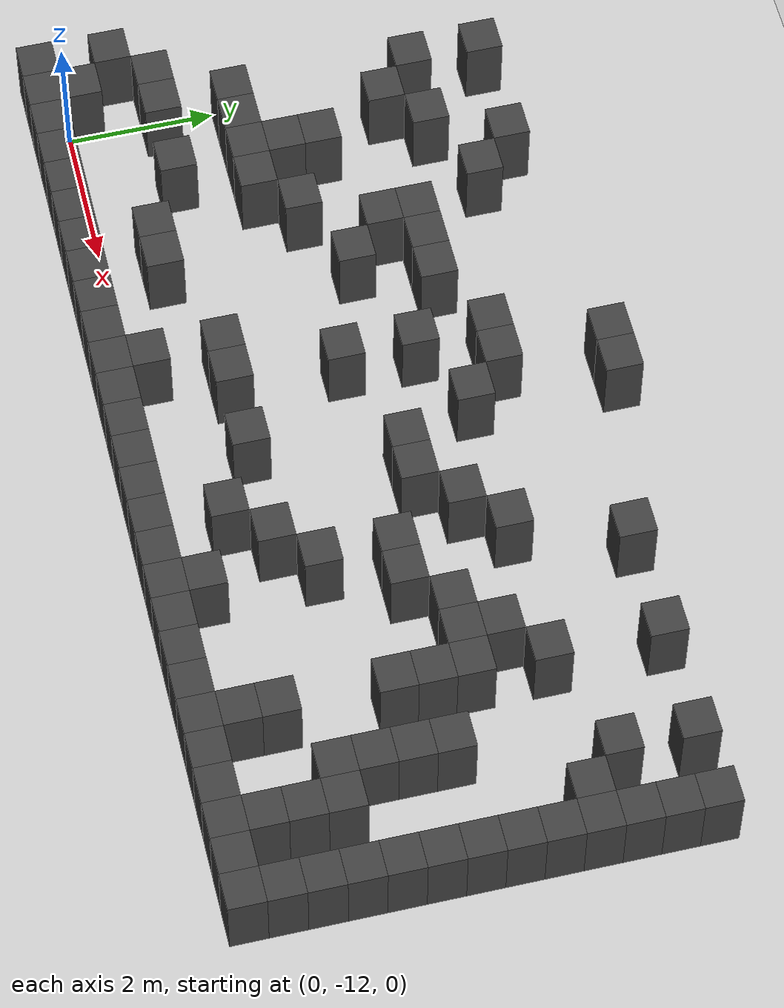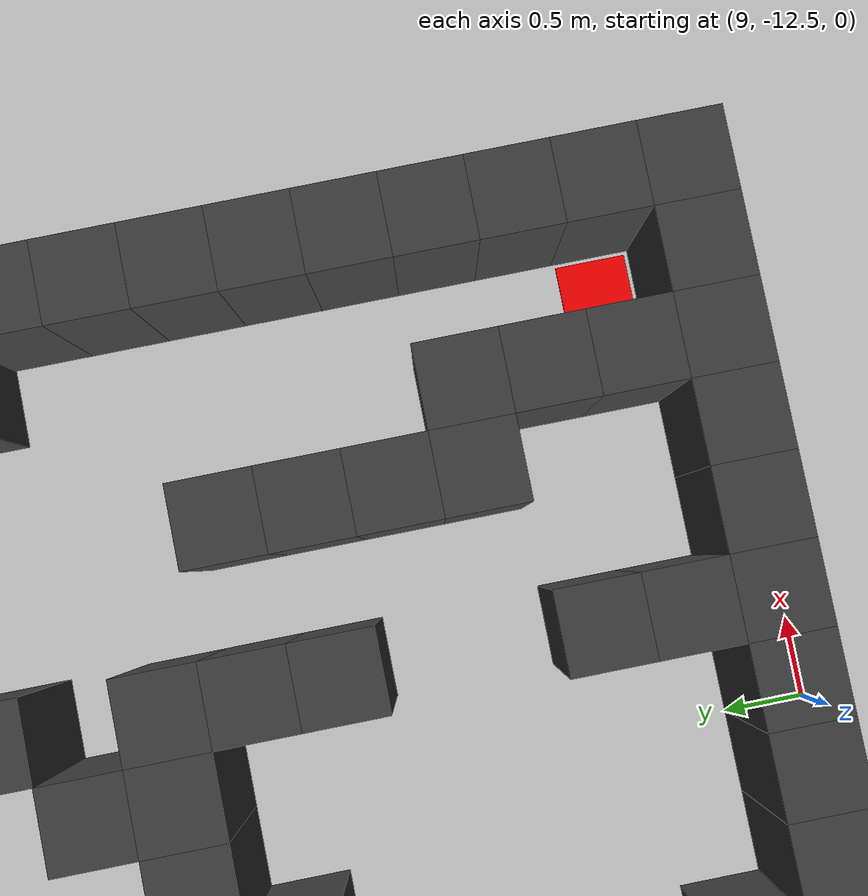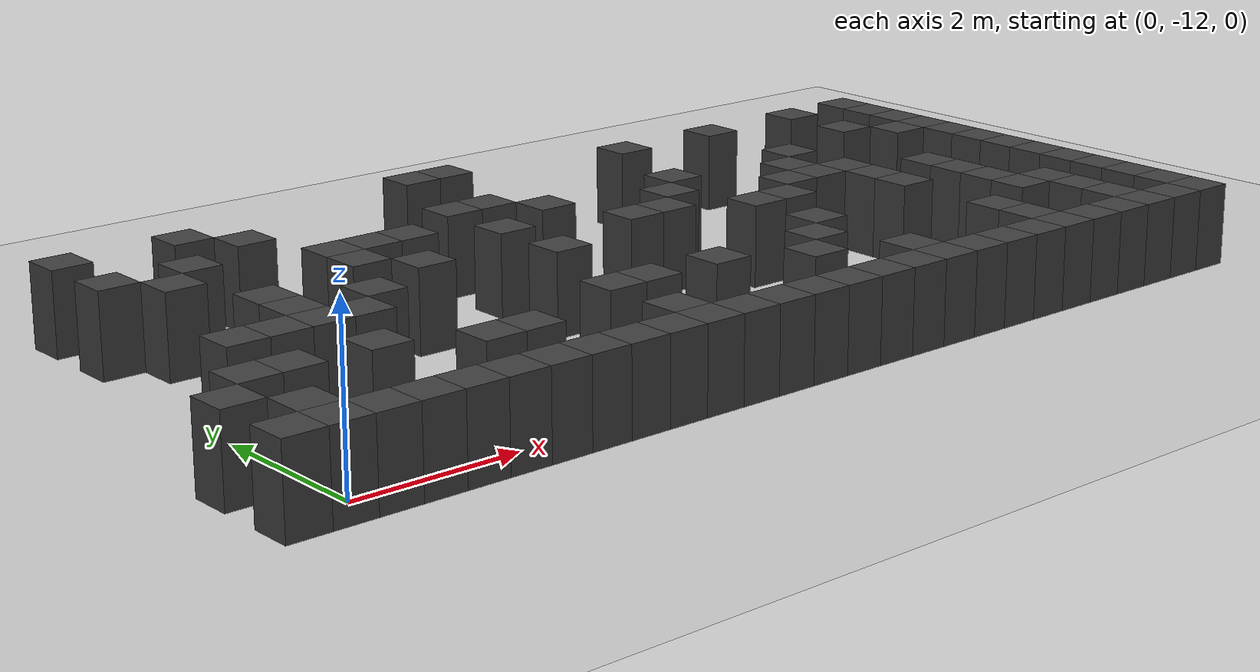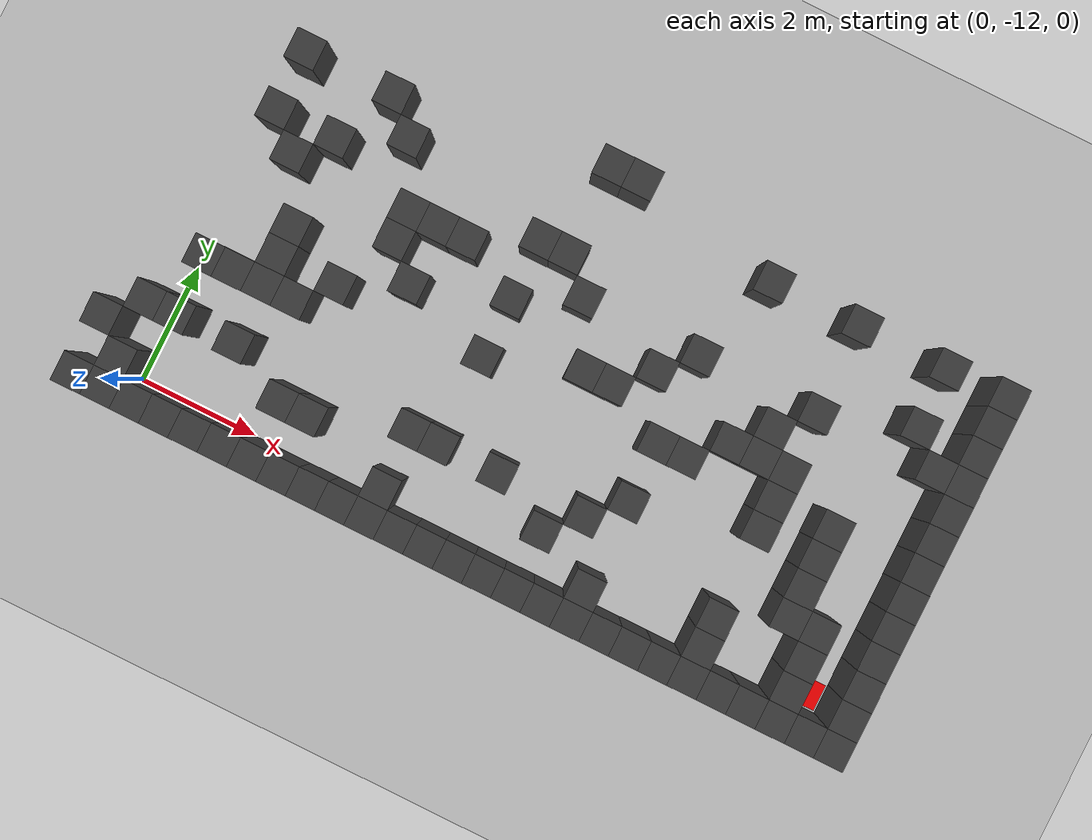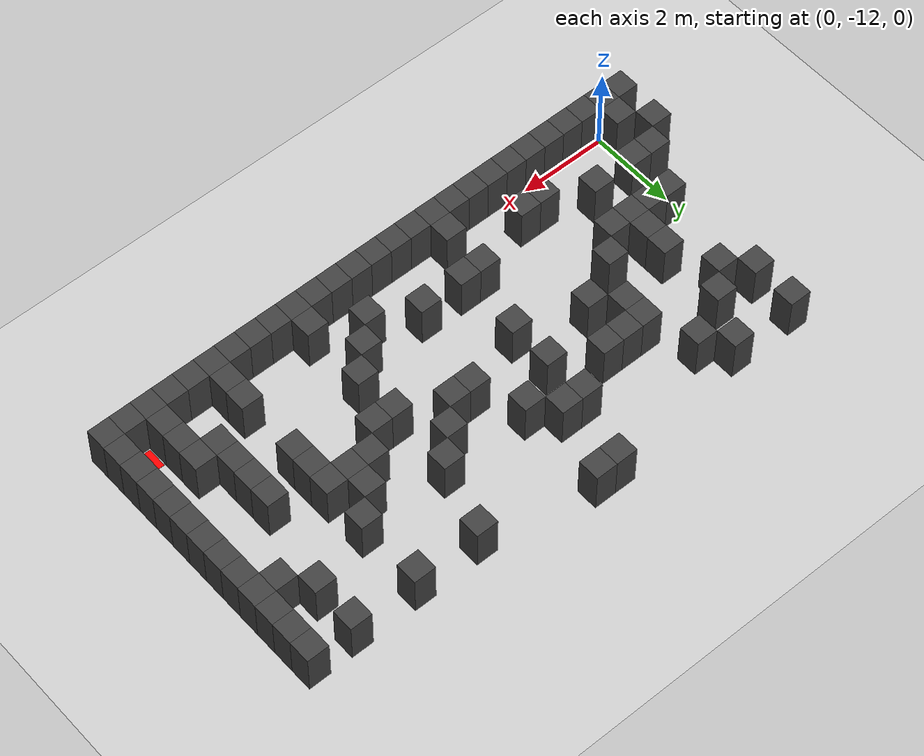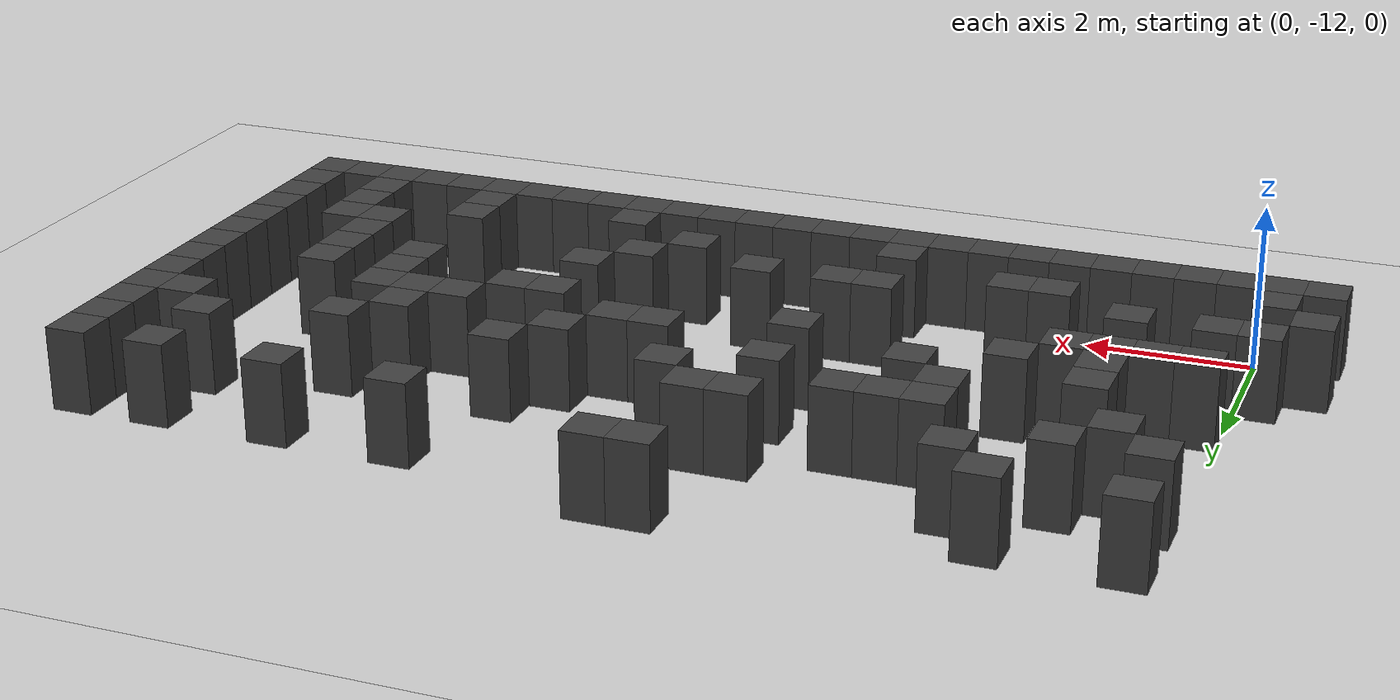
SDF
<sdf version="1.7">
 <world name="map_3955">
  <model name="ground_plane">
   <static>true</static>
   <link name="link">
    <collision name="collision">
     <geometry><plane><normal>0 0 1</normal><size>200 200</size></plane></geometry>
    </collision>
    <visual name="visual">
     <geometry><plane><normal>0 0 1</normal><size>200 200</size></plane></geometry>
     <material><ambient>0.8 0.8 0.8 1</ambient><diffuse>0.8 0.8 0.8 1</diffuse></material>
    </visual>
   </link>
  </model>
  <model name="maze_environment">
   <static>true</static>
   <link name="wall_447">
    <pose>5.250 -5.750 0.500 0 0 0</pose>
    <collision name="col"><geometry><box><size>0.5 0.5 1.0</size></box></geometry></collision>
    <visual name="vis">
     <geometry><box><size>0.5 0.5 1.0</size></box></geometry>
     <material><ambient>0.15 0.15 0.15 1</ambient><diffuse>0.25 0.25 0.25 1</diffuse></material>
    </visual>
   </link>
   <link name="wall_448">
    <pose>5.750 -5.750 0.500 0 0 0</pose>
    <collision name="col"><geometry><box><size>0.5 0.5 1.0</size></box></geometry></collision>
    <visual name="vis">
     <geometry><box><size>0.5 0.5 1.0</size></box></geometry>
     <material><ambient>0.15 0.15 0.15 1</ambient><diffuse>0.25 0.25 0.25 1</diffuse></material>
    </visual>
   </link>
   <link name="wall_460">
    <pose>0.250 -6.250 0.500 0 0 0</pose>
    <collision name="col"><geometry><box><size>0.5 0.5 1.0</size></box></geometry></collision>
    <visual name="vis">
     <geometry><box><size>0.5 0.5 1.0</size></box></geometry>
     <material><ambient>0.15 0.15 0.15 1</ambient><diffuse>0.25 0.25 0.25 1</diffuse></material>
    </visual>
   </link>
   <link name="wall_461">
    <pose>1.750 -6.250 0.500 0 0 0</pose>
    <collision name="col"><geometry><box><size>0.5 0.5 1.0</size></box></geometry></collision>
    <visual name="vis">
     <geometry><box><size>0.5 0.5 1.0</size></box></geometry>
     <material><ambient>0.15 0.15 0.15 1</ambient><diffuse>0.25 0.25 0.25 1</diffuse></material>
    </visual>
   </link>
   <link name="wall_462">
    <pose>8.250 -6.250 0.500 0 0 0</pose>
    <collision name="col"><geometry><box><size>0.5 0.5 1.0</size></box></geometry></collision>
    <visual name="vis">
     <geometry><box><size>0.5 0.5 1.0</size></box></geometry>
     <material><ambient>0.15 0.15 0.15 1</ambient><diffuse>0.25 0.25 0.25 1</diffuse></material>
    </visual>
   </link>
   <link name="wall_463">
    <pose>9.750 -6.250 0.500 0 0 0</pose>
    <collision name="col"><geometry><box><size>0.5 0.5 1.0</size></box></geometry></collision>
    <visual name="vis">
     <geometry><box><size>0.5 0.5 1.0</size></box></geometry>
     <material><ambient>0.15 0.15 0.15 1</ambient><diffuse>0.25 0.25 0.25 1</diffuse></material>
    </visual>
   </link>
   <link name="wall_464">
    <pose>11.250 -6.250 0.500 0 0 0</pose>
    <collision name="col"><geometry><box><size>0.5 0.5 1.0</size></box></geometry></collision>
    <visual name="vis">
     <geometry><box><size>0.5 0.5 1.0</size></box></geometry>
     <material><ambient>0.15 0.15 0.15 1</ambient><diffuse>0.25 0.25 0.25 1</diffuse></material>
    </visual>
   </link>
   <link name="wall_465">
    <pose>12.250 -6.250 0.500 0 0 0</pose>
    <collision name="col"><geometry><box><size>0.5 0.5 1.0</size></box></geometry></collision>
    <visual name="vis">
     <geometry><box><size>0.5 0.5 1.0</size></box></geometry>
     <material><ambient>0.15 0.15 0.15 1</ambient><diffuse>0.25 0.25 0.25 1</diffuse></material>
    </visual>
   </link>
   <link name="wall_475">
    <pose>2.250 -6.750 0.500 0 0 0</pose>
    <collision name="col"><geometry><box><size>0.5 0.5 1.0</size></box></geometry></collision>
    <visual name="vis">
     <geometry><box><size>0.5 0.5 1.0</size></box></geometry>
     <material><ambient>0.15 0.15 0.15 1</ambient><diffuse>0.25 0.25 0.25 1</diffuse></material>
    </visual>
   </link>
   <link name="wall_476">
    <pose>12.250 -6.750 0.500 0 0 0</pose>
    <collision name="col"><geometry><box><size>0.5 0.5 1.0</size></box></geometry></collision>
    <visual name="vis">
     <geometry><box><size>0.5 0.5 1.0</size></box></geometry>
     <material><ambient>0.15 0.15 0.15 1</ambient><diffuse>0.25 0.25 0.25 1</diffuse></material>
    </visual>
   </link>
   <link name="wall_484">
    <pose>0.250 -7.250 0.500 0 0 0</pose>
    <collision name="col"><geometry><box><size>0.5 0.5 1.0</size></box></geometry></collision>
    <visual name="vis">
     <geometry><box><size>0.5 0.5 1.0</size></box></geometry>
     <material><ambient>0.15 0.15 0.15 1</ambient><diffuse>0.25 0.25 0.25 1</diffuse></material>
    </visual>
   </link>
   <link name="wall_485">
    <pose>1.250 -7.250 0.500 0 0 0</pose>
    <collision name="col"><geometry><box><size>0.5 0.5 1.0</size></box></geometry></collision>
    <visual name="vis">
     <geometry><box><size>0.5 0.5 1.0</size></box></geometry>
     <material><ambient>0.15 0.15 0.15 1</ambient><diffuse>0.25 0.25 0.25 1</diffuse></material>
    </visual>
   </link>
   <link name="wall_486">
    <pose>4.750 -7.250 0.500 0 0 0</pose>
    <collision name="col"><geometry><box><size>0.5 0.5 1.0</size></box></geometry></collision>
    <visual name="vis">
     <geometry><box><size>0.5 0.5 1.0</size></box></geometry>
     <material><ambient>0.15 0.15 0.15 1</ambient><diffuse>0.25 0.25 0.25 1</diffuse></material>
    </visual>
   </link>
   <link name="wall_487">
    <pose>5.250 -7.250 0.500 0 0 0</pose>
    <collision name="col"><geometry><box><size>0.5 0.5 1.0</size></box></geometry></collision>
    <visual name="vis">
     <geometry><box><size>0.5 0.5 1.0</size></box></geometry>
     <material><ambient>0.15 0.15 0.15 1</ambient><diffuse>0.25 0.25 0.25 1</diffuse></material>
    </visual>
   </link>
   <link name="wall_488">
    <pose>11.250 -7.250 0.500 0 0 0</pose>
    <collision name="col"><geometry><box><size>0.5 0.5 1.0</size></box></geometry></collision>
    <visual name="vis">
     <geometry><box><size>0.5 0.5 1.0</size></box></geometry>
     <material><ambient>0.15 0.15 0.15 1</ambient><diffuse>0.25 0.25 0.25 1</diffuse></material>
    </visual>
   </link>
   <link name="wall_489">
    <pose>12.250 -7.250 0.500 0 0 0</pose>
    <collision name="col"><geometry><box><size>0.5 0.5 1.0</size></box></geometry></collision>
    <visual name="vis">
     <geometry><box><size>0.5 0.5 1.0</size></box></geometry>
     <material><ambient>0.15 0.15 0.15 1</ambient><diffuse>0.25 0.25 0.25 1</diffuse></material>
    </visual>
   </link>
   <link name="wall_495">
    <pose>0.750 -7.750 0.500 0 0 0</pose>
    <collision name="col"><geometry><box><size>0.5 0.5 1.0</size></box></geometry></collision>
    <visual name="vis">
     <geometry><box><size>0.5 0.5 1.0</size></box></geometry>
     <material><ambient>0.15 0.15 0.15 1</ambient><diffuse>0.25 0.25 0.25 1</diffuse></material>
    </visual>
   </link>
   <link name="wall_496">
    <pose>2.750 -7.750 0.500 0 0 0</pose>
    <collision name="col"><geometry><box><size>0.5 0.5 1.0</size></box></geometry></collision>
    <visual name="vis">
     <geometry><box><size>0.5 0.5 1.0</size></box></geometry>
     <material><ambient>0.15 0.15 0.15 1</ambient><diffuse>0.25 0.25 0.25 1</diffuse></material>
    </visual>
   </link>
   <link name="wall_497">
    <pose>3.250 -7.750 0.500 0 0 0</pose>
    <collision name="col"><geometry><box><size>0.5 0.5 1.0</size></box></geometry></collision>
    <visual name="vis">
     <geometry><box><size>0.5 0.5 1.0</size></box></geometry>
     <material><ambient>0.15 0.15 0.15 1</ambient><diffuse>0.25 0.25 0.25 1</diffuse></material>
    </visual>
   </link>
   <link name="wall_498">
    <pose>3.750 -7.750 0.500 0 0 0</pose>
    <collision name="col"><geometry><box><size>0.5 0.5 1.0</size></box></geometry></collision>
    <visual name="vis">
     <geometry><box><size>0.5 0.5 1.0</size></box></geometry>
     <material><ambient>0.15 0.15 0.15 1</ambient><diffuse>0.25 0.25 0.25 1</diffuse></material>
    </visual>
   </link>
   <link name="wall_499">
    <pose>5.750 -7.750 0.500 0 0 0</pose>
    <collision name="col"><geometry><box><size>0.5 0.5 1.0</size></box></geometry></collision>
    <visual name="vis">
     <geometry><box><size>0.5 0.5 1.0</size></box></geometry>
     <material><ambient>0.15 0.15 0.15 1</ambient><diffuse>0.25 0.25 0.25 1</diffuse></material>
    </visual>
   </link>
   <link name="wall_500">
    <pose>7.750 -7.750 0.500 0 0 0</pose>
    <collision name="col"><geometry><box><size>0.5 0.5 1.0</size></box></geometry></collision>
    <visual name="vis">
     <geometry><box><size>0.5 0.5 1.0</size></box></geometry>
     <material><ambient>0.15 0.15 0.15 1</ambient><diffuse>0.25 0.25 0.25 1</diffuse></material>
    </visual>
   </link>
   <link name="wall_501">
    <pose>9.750 -7.750 0.500 0 0 0</pose>
    <collision name="col"><geometry><box><size>0.5 0.5 1.0</size></box></geometry></collision>
    <visual name="vis">
     <geometry><box><size>0.5 0.5 1.0</size></box></geometry>
     <material><ambient>0.15 0.15 0.15 1</ambient><diffuse>0.25 0.25 0.25 1</diffuse></material>
    </visual>
   </link>
   <link name="wall_502">
    <pose>11.750 -7.750 0.500 0 0 0</pose>
    <collision name="col"><geometry><box><size>0.5 0.5 1.0</size></box></geometry></collision>
    <visual name="vis">
     <geometry><box><size>0.5 0.5 1.0</size></box></geometry>
     <material><ambient>0.15 0.15 0.15 1</ambient><diffuse>0.25 0.25 0.25 1</diffuse></material>
    </visual>
   </link>
   <link name="wall_503">
    <pose>12.250 -7.750 0.500 0 0 0</pose>
    <collision name="col"><geometry><box><size>0.5 0.5 1.0</size></box></geometry></collision>
    <visual name="vis">
     <geometry><box><size>0.5 0.5 1.0</size></box></geometry>
     <material><ambient>0.15 0.15 0.15 1</ambient><diffuse>0.25 0.25 0.25 1</diffuse></material>
    </visual>
   </link>
   <link name="wall_509">
    <pose>2.750 -8.250 0.500 0 0 0</pose>
    <collision name="col"><geometry><box><size>0.5 0.5 1.0</size></box></geometry></collision>
    <visual name="vis">
     <geometry><box><size>0.5 0.5 1.0</size></box></geometry>
     <material><ambient>0.15 0.15 0.15 1</ambient><diffuse>0.25 0.25 0.25 1</diffuse></material>
    </visual>
   </link>
   <link name="wall_510">
    <pose>4.750 -8.250 0.500 0 0 0</pose>
    <collision name="col"><geometry><box><size>0.5 0.5 1.0</size></box></geometry></collision>
    <visual name="vis">
     <geometry><box><size>0.5 0.5 1.0</size></box></geometry>
     <material><ambient>0.15 0.15 0.15 1</ambient><diffuse>0.25 0.25 0.25 1</diffuse></material>
    </visual>
   </link>
   <link name="wall_511">
    <pose>7.250 -8.250 0.500 0 0 0</pose>
    <collision name="col"><geometry><box><size>0.5 0.5 1.0</size></box></geometry></collision>
    <visual name="vis">
     <geometry><box><size>0.5 0.5 1.0</size></box></geometry>
     <material><ambient>0.15 0.15 0.15 1</ambient><diffuse>0.25 0.25 0.25 1</diffuse></material>
    </visual>
   </link>
   <link name="wall_512">
    <pose>9.250 -8.250 0.500 0 0 0</pose>
    <collision name="col"><geometry><box><size>0.5 0.5 1.0</size></box></geometry></collision>
    <visual name="vis">
     <geometry><box><size>0.5 0.5 1.0</size></box></geometry>
     <material><ambient>0.15 0.15 0.15 1</ambient><diffuse>0.25 0.25 0.25 1</diffuse></material>
    </visual>
   </link>
   <link name="wall_513">
    <pose>12.250 -8.250 0.500 0 0 0</pose>
    <collision name="col"><geometry><box><size>0.5 0.5 1.0</size></box></geometry></collision>
    <visual name="vis">
     <geometry><box><size>0.5 0.5 1.0</size></box></geometry>
     <material><ambient>0.15 0.15 0.15 1</ambient><diffuse>0.25 0.25 0.25 1</diffuse></material>
    </visual>
   </link>
   <link name="wall_517">
    <pose>1.250 -8.750 0.500 0 0 0</pose>
    <collision name="col"><geometry><box><size>0.5 0.5 1.0</size></box></geometry></collision>
    <visual name="vis">
     <geometry><box><size>0.5 0.5 1.0</size></box></geometry>
     <material><ambient>0.15 0.15 0.15 1</ambient><diffuse>0.25 0.25 0.25 1</diffuse></material>
    </visual>
   </link>
   <link name="wall_518">
    <pose>3.250 -8.750 0.500 0 0 0</pose>
    <collision name="col"><geometry><box><size>0.5 0.5 1.0</size></box></geometry></collision>
    <visual name="vis">
     <geometry><box><size>0.5 0.5 1.0</size></box></geometry>
     <material><ambient>0.15 0.15 0.15 1</ambient><diffuse>0.25 0.25 0.25 1</diffuse></material>
    </visual>
   </link>
   <link name="wall_519">
    <pose>6.250 -8.750 0.500 0 0 0</pose>
    <collision name="col"><geometry><box><size>0.5 0.5 1.0</size></box></geometry></collision>
    <visual name="vis">
     <geometry><box><size>0.5 0.5 1.0</size></box></geometry>
     <material><ambient>0.15 0.15 0.15 1</ambient><diffuse>0.25 0.25 0.25 1</diffuse></material>
    </visual>
   </link>
   <link name="wall_520">
    <pose>6.750 -8.750 0.500 0 0 0</pose>
    <collision name="col"><geometry><box><size>0.5 0.5 1.0</size></box></geometry></collision>
    <visual name="vis">
     <geometry><box><size>0.5 0.5 1.0</size></box></geometry>
     <material><ambient>0.15 0.15 0.15 1</ambient><diffuse>0.25 0.25 0.25 1</diffuse></material>
    </visual>
   </link>
   <link name="wall_521">
    <pose>8.750 -8.750 0.500 0 0 0</pose>
    <collision name="col"><geometry><box><size>0.5 0.5 1.0</size></box></geometry></collision>
    <visual name="vis">
     <geometry><box><size>0.5 0.5 1.0</size></box></geometry>
     <material><ambient>0.15 0.15 0.15 1</ambient><diffuse>0.25 0.25 0.25 1</diffuse></material>
    </visual>
   </link>
   <link name="wall_522">
    <pose>9.250 -8.750 0.500 0 0 0</pose>
    <collision name="col"><geometry><box><size>0.5 0.5 1.0</size></box></geometry></collision>
    <visual name="vis">
     <geometry><box><size>0.5 0.5 1.0</size></box></geometry>
     <material><ambient>0.15 0.15 0.15 1</ambient><diffuse>0.25 0.25 0.25 1</diffuse></material>
    </visual>
   </link>
   <link name="wall_523">
    <pose>9.750 -8.750 0.500 0 0 0</pose>
    <collision name="col"><geometry><box><size>0.5 0.5 1.0</size></box></geometry></collision>
    <visual name="vis">
     <geometry><box><size>0.5 0.5 1.0</size></box></geometry>
     <material><ambient>0.15 0.15 0.15 1</ambient><diffuse>0.25 0.25 0.25 1</diffuse></material>
    </visual>
   </link>
   <link name="wall_524">
    <pose>12.250 -8.750 0.500 0 0 0</pose>
    <collision name="col"><geometry><box><size>0.5 0.5 1.0</size></box></geometry></collision>
    <visual name="vis">
     <geometry><box><size>0.5 0.5 1.0</size></box></geometry>
     <material><ambient>0.15 0.15 0.15 1</ambient><diffuse>0.25 0.25 0.25 1</diffuse></material>
    </visual>
   </link>
   <link name="wall_528">
    <pose>1.250 -9.250 0.500 0 0 0</pose>
    <collision name="col"><geometry><box><size>0.5 0.5 1.0</size></box></geometry></collision>
    <visual name="vis">
     <geometry><box><size>0.5 0.5 1.0</size></box></geometry>
     <material><ambient>0.15 0.15 0.15 1</ambient><diffuse>0.25 0.25 0.25 1</diffuse></material>
    </visual>
   </link>
   <link name="wall_529">
    <pose>2.250 -9.250 0.500 0 0 0</pose>
    <collision name="col"><geometry><box><size>0.5 0.5 1.0</size></box></geometry></collision>
    <visual name="vis">
     <geometry><box><size>0.5 0.5 1.0</size></box></geometry>
     <material><ambient>0.15 0.15 0.15 1</ambient><diffuse>0.25 0.25 0.25 1</diffuse></material>
    </visual>
   </link>
   <link name="wall_530">
    <pose>4.750 -9.250 0.500 0 0 0</pose>
    <collision name="col"><geometry><box><size>0.5 0.5 1.0</size></box></geometry></collision>
    <visual name="vis">
     <geometry><box><size>0.5 0.5 1.0</size></box></geometry>
     <material><ambient>0.15 0.15 0.15 1</ambient><diffuse>0.25 0.25 0.25 1</diffuse></material>
    </visual>
   </link>
   <link name="wall_531">
    <pose>7.750 -9.250 0.500 0 0 0</pose>
    <collision name="col"><geometry><box><size>0.5 0.5 1.0</size></box></geometry></collision>
    <visual name="vis">
     <geometry><box><size>0.5 0.5 1.0</size></box></geometry>
     <material><ambient>0.15 0.15 0.15 1</ambient><diffuse>0.25 0.25 0.25 1</diffuse></material>
    </visual>
   </link>
   <link name="wall_532">
    <pose>8.250 -9.250 0.500 0 0 0</pose>
    <collision name="col"><geometry><box><size>0.5 0.5 1.0</size></box></geometry></collision>
    <visual name="vis">
     <geometry><box><size>0.5 0.5 1.0</size></box></geometry>
     <material><ambient>0.15 0.15 0.15 1</ambient><diffuse>0.25 0.25 0.25 1</diffuse></material>
    </visual>
   </link>
   <link name="wall_533">
    <pose>9.750 -9.250 0.500 0 0 0</pose>
    <collision name="col"><geometry><box><size>0.5 0.5 1.0</size></box></geometry></collision>
    <visual name="vis">
     <geometry><box><size>0.5 0.5 1.0</size></box></geometry>
     <material><ambient>0.15 0.15 0.15 1</ambient><diffuse>0.25 0.25 0.25 1</diffuse></material>
    </visual>
   </link>
   <link name="wall_534">
    <pose>10.750 -9.250 0.500 0 0 0</pose>
    <collision name="col"><geometry><box><size>0.5 0.5 1.0</size></box></geometry></collision>
    <visual name="vis">
     <geometry><box><size>0.5 0.5 1.0</size></box></geometry>
     <material><ambient>0.15 0.15 0.15 1</ambient><diffuse>0.25 0.25 0.25 1</diffuse></material>
    </visual>
   </link>
   <link name="wall_535">
    <pose>12.250 -9.250 0.500 0 0 0</pose>
    <collision name="col"><geometry><box><size>0.5 0.5 1.0</size></box></geometry></collision>
    <visual name="vis">
     <geometry><box><size>0.5 0.5 1.0</size></box></geometry>
     <material><ambient>0.15 0.15 0.15 1</ambient><diffuse>0.25 0.25 0.25 1</diffuse></material>
    </visual>
   </link>
   <link name="wall_543">
    <pose>0.250 -9.750 0.500 0 0 0</pose>
    <collision name="col"><geometry><box><size>0.5 0.5 1.0</size></box></geometry></collision>
    <visual name="vis">
     <geometry><box><size>0.5 0.5 1.0</size></box></geometry>
     <material><ambient>0.15 0.15 0.15 1</ambient><diffuse>0.25 0.25 0.25 1</diffuse></material>
    </visual>
   </link>
   <link name="wall_544">
    <pose>0.750 -9.750 0.500 0 0 0</pose>
    <collision name="col"><geometry><box><size>0.5 0.5 1.0</size></box></geometry></collision>
    <visual name="vis">
     <geometry><box><size>0.5 0.5 1.0</size></box></geometry>
     <material><ambient>0.15 0.15 0.15 1</ambient><diffuse>0.25 0.25 0.25 1</diffuse></material>
    </visual>
   </link>
   <link name="wall_545">
    <pose>1.250 -9.750 0.500 0 0 0</pose>
    <collision name="col"><geometry><box><size>0.5 0.5 1.0</size></box></geometry></collision>
    <visual name="vis">
     <geometry><box><size>0.5 0.5 1.0</size></box></geometry>
     <material><ambient>0.15 0.15 0.15 1</ambient><diffuse>0.25 0.25 0.25 1</diffuse></material>
    </visual>
   </link>
   <link name="wall_546">
    <pose>1.750 -9.750 0.500 0 0 0</pose>
    <collision name="col"><geometry><box><size>0.5 0.5 1.0</size></box></geometry></collision>
    <visual name="vis">
     <geometry><box><size>0.5 0.5 1.0</size></box></geometry>
     <material><ambient>0.15 0.15 0.15 1</ambient><diffuse>0.25 0.25 0.25 1</diffuse></material>
    </visual>
   </link>
   <link name="wall_547">
    <pose>9.750 -9.750 0.500 0 0 0</pose>
    <collision name="col"><geometry><box><size>0.5 0.5 1.0</size></box></geometry></collision>
    <visual name="vis">
     <geometry><box><size>0.5 0.5 1.0</size></box></geometry>
     <material><ambient>0.15 0.15 0.15 1</ambient><diffuse>0.25 0.25 0.25 1</diffuse></material>
    </visual>
   </link>
   <link name="wall_548">
    <pose>10.750 -9.750 0.500 0 0 0</pose>
    <collision name="col"><geometry><box><size>0.5 0.5 1.0</size></box></geometry></collision>
    <visual name="vis">
     <geometry><box><size>0.5 0.5 1.0</size></box></geometry>
     <material><ambient>0.15 0.15 0.15 1</ambient><diffuse>0.25 0.25 0.25 1</diffuse></material>
    </visual>
   </link>
   <link name="wall_549">
    <pose>12.250 -9.750 0.500 0 0 0</pose>
    <collision name="col"><geometry><box><size>0.5 0.5 1.0</size></box></geometry></collision>
    <visual name="vis">
     <geometry><box><size>0.5 0.5 1.0</size></box></geometry>
     <material><ambient>0.15 0.15 0.15 1</ambient><diffuse>0.25 0.25 0.25 1</diffuse></material>
    </visual>
   </link>
   <link name="wall_555">
    <pose>7.750 -10.250 0.500 0 0 0</pose>
    <collision name="col"><geometry><box><size>0.5 0.5 1.0</size></box></geometry></collision>
    <visual name="vis">
     <geometry><box><size>0.5 0.5 1.0</size></box></geometry>
     <material><ambient>0.15 0.15 0.15 1</ambient><diffuse>0.25 0.25 0.25 1</diffuse></material>
    </visual>
   </link>
   <link name="wall_556">
    <pose>10.750 -10.250 0.500 0 0 0</pose>
    <collision name="col"><geometry><box><size>0.5 0.5 1.0</size></box></geometry></collision>
    <visual name="vis">
     <geometry><box><size>0.5 0.5 1.0</size></box></geometry>
     <material><ambient>0.15 0.15 0.15 1</ambient><diffuse>0.25 0.25 0.25 1</diffuse></material>
    </visual>
   </link>
   <link name="wall_557">
    <pose>12.250 -10.250 0.500 0 0 0</pose>
    <collision name="col"><geometry><box><size>0.5 0.5 1.0</size></box></geometry></collision>
    <visual name="vis">
     <geometry><box><size>0.5 0.5 1.0</size></box></geometry>
     <material><ambient>0.15 0.15 0.15 1</ambient><diffuse>0.25 0.25 0.25 1</diffuse></material>
    </visual>
   </link>
   <link name="wall_562">
    <pose>-0.250 -10.750 0.500 0 0 0</pose>
    <collision name="col"><geometry><box><size>0.5 0.5 1.0</size></box></geometry></collision>
    <visual name="vis">
     <geometry><box><size>0.5 0.5 1.0</size></box></geometry>
     <material><ambient>0.15 0.15 0.15 1</ambient><diffuse>0.25 0.25 0.25 1</diffuse></material>
    </visual>
   </link>
   <link name="wall_563">
    <pose>0.250 -10.750 0.500 0 0 0</pose>
    <collision name="col"><geometry><box><size>0.5 0.5 1.0</size></box></geometry></collision>
    <visual name="vis">
     <geometry><box><size>0.5 0.5 1.0</size></box></geometry>
     <material><ambient>0.15 0.15 0.15 1</ambient><diffuse>0.25 0.25 0.25 1</diffuse></material>
    </visual>
   </link>
   <link name="wall_564">
    <pose>1.250 -10.750 0.500 0 0 0</pose>
    <collision name="col"><geometry><box><size>0.5 0.5 1.0</size></box></geometry></collision>
    <visual name="vis">
     <geometry><box><size>0.5 0.5 1.0</size></box></geometry>
     <material><ambient>0.15 0.15 0.15 1</ambient><diffuse>0.25 0.25 0.25 1</diffuse></material>
    </visual>
   </link>
   <link name="wall_565">
    <pose>4.250 -10.750 0.500 0 0 0</pose>
    <collision name="col"><geometry><box><size>0.5 0.5 1.0</size></box></geometry></collision>
    <visual name="vis">
     <geometry><box><size>0.5 0.5 1.0</size></box></geometry>
     <material><ambient>0.15 0.15 0.15 1</ambient><diffuse>0.25 0.25 0.25 1</diffuse></material>
    </visual>
   </link>
   <link name="wall_566">
    <pose>4.750 -10.750 0.500 0 0 0</pose>
    <collision name="col"><geometry><box><size>0.5 0.5 1.0</size></box></geometry></collision>
    <visual name="vis">
     <geometry><box><size>0.5 0.5 1.0</size></box></geometry>
     <material><ambient>0.15 0.15 0.15 1</ambient><diffuse>0.25 0.25 0.25 1</diffuse></material>
    </visual>
   </link>
   <link name="wall_567">
    <pose>5.750 -10.750 0.500 0 0 0</pose>
    <collision name="col"><geometry><box><size>0.5 0.5 1.0</size></box></geometry></collision>
    <visual name="vis">
     <geometry><box><size>0.5 0.5 1.0</size></box></geometry>
     <material><ambient>0.15 0.15 0.15 1</ambient><diffuse>0.25 0.25 0.25 1</diffuse></material>
    </visual>
   </link>
   <link name="wall_568">
    <pose>7.250 -10.750 0.500 0 0 0</pose>
    <collision name="col"><geometry><box><size>0.5 0.5 1.0</size></box></geometry></collision>
    <visual name="vis">
     <geometry><box><size>0.5 0.5 1.0</size></box></geometry>
     <material><ambient>0.15 0.15 0.15 1</ambient><diffuse>0.25 0.25 0.25 1</diffuse></material>
    </visual>
   </link>
   <link name="wall_569">
    <pose>10.750 -10.750 0.500 0 0 0</pose>
    <collision name="col"><geometry><box><size>0.5 0.5 1.0</size></box></geometry></collision>
    <visual name="vis">
     <geometry><box><size>0.5 0.5 1.0</size></box></geometry>
     <material><ambient>0.15 0.15 0.15 1</ambient><diffuse>0.25 0.25 0.25 1</diffuse></material>
    </visual>
   </link>
   <link name="wall_570">
    <pose>11.250 -10.750 0.500 0 0 0</pose>
    <collision name="col"><geometry><box><size>0.5 0.5 1.0</size></box></geometry></collision>
    <visual name="vis">
     <geometry><box><size>0.5 0.5 1.0</size></box></geometry>
     <material><ambient>0.15 0.15 0.15 1</ambient><diffuse>0.25 0.25 0.25 1</diffuse></material>
    </visual>
   </link>
   <link name="wall_571">
    <pose>12.250 -10.750 0.500 0 0 0</pose>
    <collision name="col"><geometry><box><size>0.5 0.5 1.0</size></box></geometry></collision>
    <visual name="vis">
     <geometry><box><size>0.5 0.5 1.0</size></box></geometry>
     <material><ambient>0.15 0.15 0.15 1</ambient><diffuse>0.25 0.25 0.25 1</diffuse></material>
    </visual>
   </link>
   <link name="wall_575">
    <pose>-0.750 -11.250 0.500 0 0 0</pose>
    <collision name="col"><geometry><box><size>0.5 0.5 1.0</size></box></geometry></collision>
    <visual name="vis">
     <geometry><box><size>0.5 0.5 1.0</size></box></geometry>
     <material><ambient>0.15 0.15 0.15 1</ambient><diffuse>0.25 0.25 0.25 1</diffuse></material>
    </visual>
   </link>
   <link name="wall_576">
    <pose>2.250 -11.250 0.500 0 0 0</pose>
    <collision name="col"><geometry><box><size>0.5 0.5 1.0</size></box></geometry></collision>
    <visual name="vis">
     <geometry><box><size>0.5 0.5 1.0</size></box></geometry>
     <material><ambient>0.15 0.15 0.15 1</ambient><diffuse>0.25 0.25 0.25 1</diffuse></material>
    </visual>
   </link>
   <link name="wall_577">
    <pose>2.750 -11.250 0.500 0 0 0</pose>
    <collision name="col"><geometry><box><size>0.5 0.5 1.0</size></box></geometry></collision>
    <visual name="vis">
     <geometry><box><size>0.5 0.5 1.0</size></box></geometry>
     <material><ambient>0.15 0.15 0.15 1</ambient><diffuse>0.25 0.25 0.25 1</diffuse></material>
    </visual>
   </link>
   <link name="wall_578">
    <pose>6.750 -11.250 0.500 0 0 0</pose>
    <collision name="col"><geometry><box><size>0.5 0.5 1.0</size></box></geometry></collision>
    <visual name="vis">
     <geometry><box><size>0.5 0.5 1.0</size></box></geometry>
     <material><ambient>0.15 0.15 0.15 1</ambient><diffuse>0.25 0.25 0.25 1</diffuse></material>
    </visual>
   </link>
   <link name="wall_579">
    <pose>9.750 -11.250 0.500 0 0 0</pose>
    <collision name="col"><geometry><box><size>0.5 0.5 1.0</size></box></geometry></collision>
    <visual name="vis">
     <geometry><box><size>0.5 0.5 1.0</size></box></geometry>
     <material><ambient>0.15 0.15 0.15 1</ambient><diffuse>0.25 0.25 0.25 1</diffuse></material>
    </visual>
   </link>
   <link name="wall_580">
    <pose>11.250 -11.250 0.500 0 0 0</pose>
    <collision name="col"><geometry><box><size>0.5 0.5 1.0</size></box></geometry></collision>
    <visual name="vis">
     <geometry><box><size>0.5 0.5 1.0</size></box></geometry>
     <material><ambient>0.15 0.15 0.15 1</ambient><diffuse>0.25 0.25 0.25 1</diffuse></material>
    </visual>
   </link>
   <link name="wall_581">
    <pose>12.250 -11.250 0.500 0 0 0</pose>
    <collision name="col"><geometry><box><size>0.5 0.5 1.0</size></box></geometry></collision>
    <visual name="vis">
     <geometry><box><size>0.5 0.5 1.0</size></box></geometry>
     <material><ambient>0.15 0.15 0.15 1</ambient><diffuse>0.25 0.25 0.25 1</diffuse></material>
    </visual>
   </link>
   <link name="wall_585">
    <pose>-0.250 -11.750 0.500 0 0 0</pose>
    <collision name="col"><geometry><box><size>0.5 0.5 1.0</size></box></geometry></collision>
    <visual name="vis">
     <geometry><box><size>0.5 0.5 1.0</size></box></geometry>
     <material><ambient>0.15 0.15 0.15 1</ambient><diffuse>0.25 0.25 0.25 1</diffuse></material>
    </visual>
   </link>
   <link name="wall_586">
    <pose>4.250 -11.750 0.500 0 0 0</pose>
    <collision name="col"><geometry><box><size>0.5 0.5 1.0</size></box></geometry></collision>
    <visual name="vis">
     <geometry><box><size>0.5 0.5 1.0</size></box></geometry>
     <material><ambient>0.15 0.15 0.15 1</ambient><diffuse>0.25 0.25 0.25 1</diffuse></material>
    </visual>
   </link>
   <link name="wall_587">
    <pose>7.750 -11.750 0.500 0 0 0</pose>
    <collision name="col"><geometry><box><size>0.5 0.5 1.0</size></box></geometry></collision>
    <visual name="vis">
     <geometry><box><size>0.5 0.5 1.0</size></box></geometry>
     <material><ambient>0.15 0.15 0.15 1</ambient><diffuse>0.25 0.25 0.25 1</diffuse></material>
    </visual>
   </link>
   <link name="wall_588">
    <pose>9.750 -11.750 0.500 0 0 0</pose>
    <collision name="col"><geometry><box><size>0.5 0.5 1.0</size></box></geometry></collision>
    <visual name="vis">
     <geometry><box><size>0.5 0.5 1.0</size></box></geometry>
     <material><ambient>0.15 0.15 0.15 1</ambient><diffuse>0.25 0.25 0.25 1</diffuse></material>
    </visual>
   </link>
   <link name="wall_589">
    <pose>11.250 -11.750 0.500 0 0 0</pose>
    <collision name="col"><geometry><box><size>0.5 0.5 1.0</size></box></geometry></collision>
    <visual name="vis">
     <geometry><box><size>0.5 0.5 1.0</size></box></geometry>
     <material><ambient>0.15 0.15 0.15 1</ambient><diffuse>0.25 0.25 0.25 1</diffuse></material>
    </visual>
   </link>
   <link name="wall_590">
    <pose>12.250 -11.750 0.500 0 0 0</pose>
    <collision name="col"><geometry><box><size>0.5 0.5 1.0</size></box></geometry></collision>
    <visual name="vis">
     <geometry><box><size>0.5 0.5 1.0</size></box></geometry>
     <material><ambient>0.15 0.15 0.15 1</ambient><diffuse>0.25 0.25 0.25 1</diffuse></material>
    </visual>
   </link>
   <link name="wall_614">
    <pose>-0.750 -12.250 0.500 0 0 0</pose>
    <collision name="col"><geometry><box><size>0.5 0.5 1.0</size></box></geometry></collision>
    <visual name="vis">
     <geometry><box><size>0.5 0.5 1.0</size></box></geometry>
     <material><ambient>0.15 0.15 0.15 1</ambient><diffuse>0.25 0.25 0.25 1</diffuse></material>
    </visual>
   </link>
   <link name="wall_615">
    <pose>-0.250 -12.250 0.500 0 0 0</pose>
    <collision name="col"><geometry><box><size>0.5 0.5 1.0</size></box></geometry></collision>
    <visual name="vis">
     <geometry><box><size>0.5 0.5 1.0</size></box></geometry>
     <material><ambient>0.15 0.15 0.15 1</ambient><diffuse>0.25 0.25 0.25 1</diffuse></material>
    </visual>
   </link>
   <link name="wall_616">
    <pose>0.250 -12.250 0.500 0 0 0</pose>
    <collision name="col"><geometry><box><size>0.5 0.5 1.0</size></box></geometry></collision>
    <visual name="vis">
     <geometry><box><size>0.5 0.5 1.0</size></box></geometry>
     <material><ambient>0.15 0.15 0.15 1</ambient><diffuse>0.25 0.25 0.25 1</diffuse></material>
    </visual>
   </link>
   <link name="wall_617">
    <pose>0.750 -12.250 0.500 0 0 0</pose>
    <collision name="col"><geometry><box><size>0.5 0.5 1.0</size></box></geometry></collision>
    <visual name="vis">
     <geometry><box><size>0.5 0.5 1.0</size></box></geometry>
     <material><ambient>0.15 0.15 0.15 1</ambient><diffuse>0.25 0.25 0.25 1</diffuse></material>
    </visual>
   </link>
   <link name="wall_618">
    <pose>1.250 -12.250 0.500 0 0 0</pose>
    <collision name="col"><geometry><box><size>0.5 0.5 1.0</size></box></geometry></collision>
    <visual name="vis">
     <geometry><box><size>0.5 0.5 1.0</size></box></geometry>
     <material><ambient>0.15 0.15 0.15 1</ambient><diffuse>0.25 0.25 0.25 1</diffuse></material>
    </visual>
   </link>
   <link name="wall_619">
    <pose>1.750 -12.250 0.500 0 0 0</pose>
    <collision name="col"><geometry><box><size>0.5 0.5 1.0</size></box></geometry></collision>
    <visual name="vis">
     <geometry><box><size>0.5 0.5 1.0</size></box></geometry>
     <material><ambient>0.15 0.15 0.15 1</ambient><diffuse>0.25 0.25 0.25 1</diffuse></material>
    </visual>
   </link>
   <link name="wall_620">
    <pose>2.250 -12.250 0.500 0 0 0</pose>
    <collision name="col"><geometry><box><size>0.5 0.5 1.0</size></box></geometry></collision>
    <visual name="vis">
     <geometry><box><size>0.5 0.5 1.0</size></box></geometry>
     <material><ambient>0.15 0.15 0.15 1</ambient><diffuse>0.25 0.25 0.25 1</diffuse></material>
    </visual>
   </link>
   <link name="wall_621">
    <pose>2.750 -12.250 0.500 0 0 0</pose>
    <collision name="col"><geometry><box><size>0.5 0.5 1.0</size></box></geometry></collision>
    <visual name="vis">
     <geometry><box><size>0.5 0.5 1.0</size></box></geometry>
     <material><ambient>0.15 0.15 0.15 1</ambient><diffuse>0.25 0.25 0.25 1</diffuse></material>
    </visual>
   </link>
   <link name="wall_622">
    <pose>3.250 -12.250 0.500 0 0 0</pose>
    <collision name="col"><geometry><box><size>0.5 0.5 1.0</size></box></geometry></collision>
    <visual name="vis">
     <geometry><box><size>0.5 0.5 1.0</size></box></geometry>
     <material><ambient>0.15 0.15 0.15 1</ambient><diffuse>0.25 0.25 0.25 1</diffuse></material>
    </visual>
   </link>
   <link name="wall_623">
    <pose>3.750 -12.250 0.500 0 0 0</pose>
    <collision name="col"><geometry><box><size>0.5 0.5 1.0</size></box></geometry></collision>
    <visual name="vis">
     <geometry><box><size>0.5 0.5 1.0</size></box></geometry>
     <material><ambient>0.15 0.15 0.15 1</ambient><diffuse>0.25 0.25 0.25 1</diffuse></material>
    </visual>
   </link>
   <link name="wall_624">
    <pose>4.250 -12.250 0.500 0 0 0</pose>
    <collision name="col"><geometry><box><size>0.5 0.5 1.0</size></box></geometry></collision>
    <visual name="vis">
     <geometry><box><size>0.5 0.5 1.0</size></box></geometry>
     <material><ambient>0.15 0.15 0.15 1</ambient><diffuse>0.25 0.25 0.25 1</diffuse></material>
    </visual>
   </link>
   <link name="wall_625">
    <pose>4.750 -12.250 0.500 0 0 0</pose>
    <collision name="col"><geometry><box><size>0.5 0.5 1.0</size></box></geometry></collision>
    <visual name="vis">
     <geometry><box><size>0.5 0.5 1.0</size></box></geometry>
     <material><ambient>0.15 0.15 0.15 1</ambient><diffuse>0.25 0.25 0.25 1</diffuse></material>
    </visual>
   </link>
   <link name="wall_626">
    <pose>5.250 -12.250 0.500 0 0 0</pose>
    <collision name="col"><geometry><box><size>0.5 0.5 1.0</size></box></geometry></collision>
    <visual name="vis">
     <geometry><box><size>0.5 0.5 1.0</size></box></geometry>
     <material><ambient>0.15 0.15 0.15 1</ambient><diffuse>0.25 0.25 0.25 1</diffuse></material>
    </visual>
   </link>
   <link name="wall_627">
    <pose>5.750 -12.250 0.500 0 0 0</pose>
    <collision name="col"><geometry><box><size>0.5 0.5 1.0</size></box></geometry></collision>
    <visual name="vis">
     <geometry><box><size>0.5 0.5 1.0</size></box></geometry>
     <material><ambient>0.15 0.15 0.15 1</ambient><diffuse>0.25 0.25 0.25 1</diffuse></material>
    </visual>
   </link>
   <link name="wall_628">
    <pose>6.250 -12.250 0.500 0 0 0</pose>
    <collision name="col"><geometry><box><size>0.5 0.5 1.0</size></box></geometry></collision>
    <visual name="vis">
     <geometry><box><size>0.5 0.5 1.0</size></box></geometry>
     <material><ambient>0.15 0.15 0.15 1</ambient><diffuse>0.25 0.25 0.25 1</diffuse></material>
    </visual>
   </link>
   <link name="wall_629">
    <pose>6.750 -12.250 0.500 0 0 0</pose>
    <collision name="col"><geometry><box><size>0.5 0.5 1.0</size></box></geometry></collision>
    <visual name="vis">
     <geometry><box><size>0.5 0.5 1.0</size></box></geometry>
     <material><ambient>0.15 0.15 0.15 1</ambient><diffuse>0.25 0.25 0.25 1</diffuse></material>
    </visual>
   </link>
   <link name="wall_630">
    <pose>7.250 -12.250 0.500 0 0 0</pose>
    <collision name="col"><geometry><box><size>0.5 0.5 1.0</size></box></geometry></collision>
    <visual name="vis">
     <geometry><box><size>0.5 0.5 1.0</size></box></geometry>
     <material><ambient>0.15 0.15 0.15 1</ambient><diffuse>0.25 0.25 0.25 1</diffuse></material>
    </visual>
   </link>
   <link name="wall_631">
    <pose>7.750 -12.250 0.500 0 0 0</pose>
    <collision name="col"><geometry><box><size>0.5 0.5 1.0</size></box></geometry></collision>
    <visual name="vis">
     <geometry><box><size>0.5 0.5 1.0</size></box></geometry>
     <material><ambient>0.15 0.15 0.15 1</ambient><diffuse>0.25 0.25 0.25 1</diffuse></material>
    </visual>
   </link>
   <link name="wall_632">
    <pose>8.250 -12.250 0.500 0 0 0</pose>
    <collision name="col"><geometry><box><size>0.5 0.5 1.0</size></box></geometry></collision>
    <visual name="vis">
     <geometry><box><size>0.5 0.5 1.0</size></box></geometry>
     <material><ambient>0.15 0.15 0.15 1</ambient><diffuse>0.25 0.25 0.25 1</diffuse></material>
    </visual>
   </link>
   <link name="wall_633">
    <pose>8.750 -12.250 0.500 0 0 0</pose>
    <collision name="col"><geometry><box><size>0.5 0.5 1.0</size></box></geometry></collision>
    <visual name="vis">
     <geometry><box><size>0.5 0.5 1.0</size></box></geometry>
     <material><ambient>0.15 0.15 0.15 1</ambient><diffuse>0.25 0.25 0.25 1</diffuse></material>
    </visual>
   </link>
   <link name="wall_634">
    <pose>9.250 -12.250 0.500 0 0 0</pose>
    <collision name="col"><geometry><box><size>0.5 0.5 1.0</size></box></geometry></collision>
    <visual name="vis">
     <geometry><box><size>0.5 0.5 1.0</size></box></geometry>
     <material><ambient>0.15 0.15 0.15 1</ambient><diffuse>0.25 0.25 0.25 1</diffuse></material>
    </visual>
   </link>
   <link name="wall_635">
    <pose>9.750 -12.250 0.500 0 0 0</pose>
    <collision name="col"><geometry><box><size>0.5 0.5 1.0</size></box></geometry></collision>
    <visual name="vis">
     <geometry><box><size>0.5 0.5 1.0</size></box></geometry>
     <material><ambient>0.15 0.15 0.15 1</ambient><diffuse>0.25 0.25 0.25 1</diffuse></material>
    </visual>
   </link>
   <link name="wall_636">
    <pose>10.250 -12.250 0.500 0 0 0</pose>
    <collision name="col"><geometry><box><size>0.5 0.5 1.0</size></box></geometry></collision>
    <visual name="vis">
     <geometry><box><size>0.5 0.5 1.0</size></box></geometry>
     <material><ambient>0.15 0.15 0.15 1</ambient><diffuse>0.25 0.25 0.25 1</diffuse></material>
    </visual>
   </link>
   <link name="wall_637">
    <pose>10.750 -12.250 0.500 0 0 0</pose>
    <collision name="col"><geometry><box><size>0.5 0.5 1.0</size></box></geometry></collision>
    <visual name="vis">
     <geometry><box><size>0.5 0.5 1.0</size></box></geometry>
     <material><ambient>0.15 0.15 0.15 1</ambient><diffuse>0.25 0.25 0.25 1</diffuse></material>
    </visual>
   </link>
   <link name="wall_638">
    <pose>11.250 -12.250 0.500 0 0 0</pose>
    <collision name="col"><geometry><box><size>0.5 0.5 1.0</size></box></geometry></collision>
    <visual name="vis">
     <geometry><box><size>0.5 0.5 1.0</size></box></geometry>
     <material><ambient>0.15 0.15 0.15 1</ambient><diffuse>0.25 0.25 0.25 1</diffuse></material>
    </visual>
   </link>
   <link name="wall_639">
    <pose>11.750 -12.250 0.500 0 0 0</pose>
    <collision name="col"><geometry><box><size>0.5 0.5 1.0</size></box></geometry></collision>
    <visual name="vis">
     <geometry><box><size>0.5 0.5 1.0</size></box></geometry>
     <material><ambient>0.15 0.15 0.15 1</ambient><diffuse>0.25 0.25 0.25 1</diffuse></material>
    </visual>
   </link>
   <link name="wall_640">
    <pose>12.250 -12.250 0.500 0 0 0</pose>
    <collision name="col"><geometry><box><size>0.5 0.5 1.0</size></box></geometry></collision>
    <visual name="vis">
     <geometry><box><size>0.5 0.5 1.0</size></box></geometry>
     <material><ambient>0.15 0.15 0.15 1</ambient><diffuse>0.25 0.25 0.25 1</diffuse></material>
    </visual>
   </link>
   <link name="goal_zone">
    <pose>11.750 -11.750 0.005 0 0 0</pose>
    <visual name="vis">
     <geometry><box><size>0.45 0.45 0.01</size></box></geometry>
     <material>
      <ambient>1.0 0.0 0.0 1</ambient>
      <diffuse>1.0 0.0 0.0 1</diffuse>
      <emissive>0.60 0.00 0.00 1</emissive>
     </material>
    </visual>
   </link>
  </model>
 </world>
</sdf>
